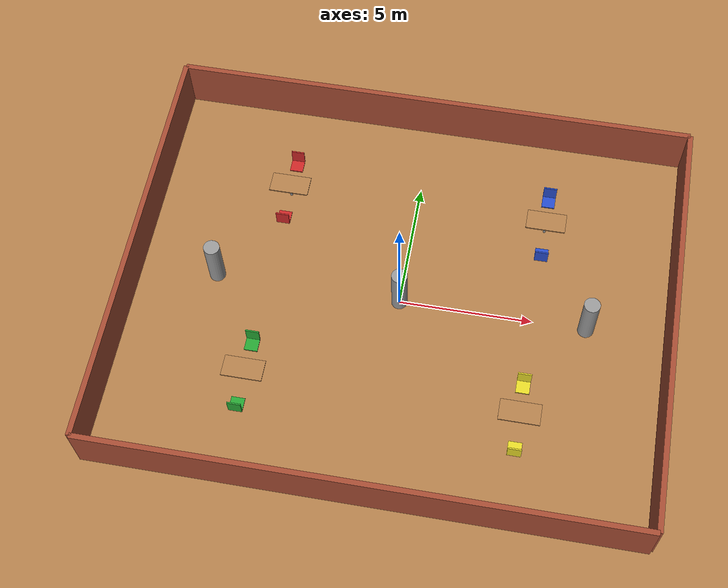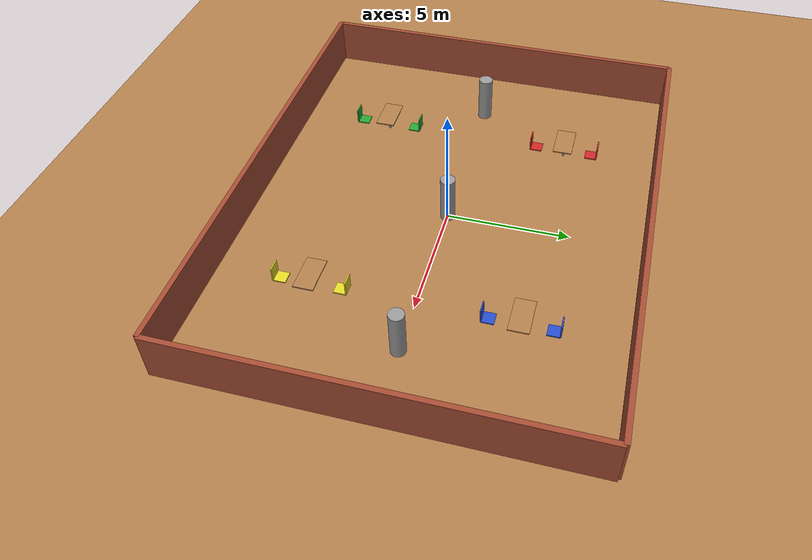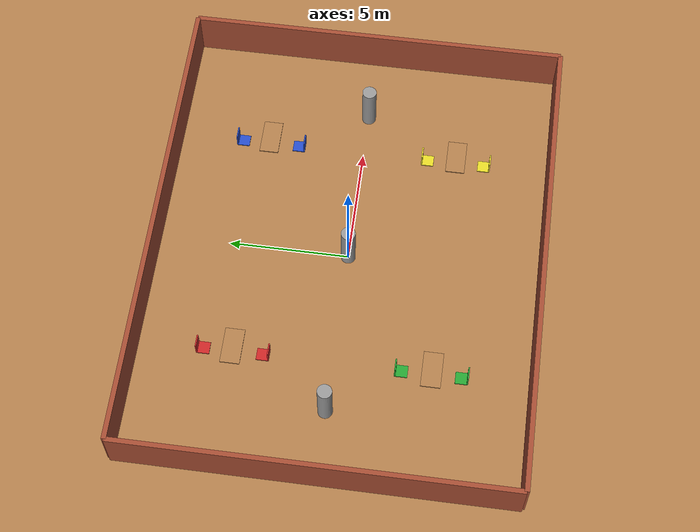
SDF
<?xml version="1.0" ?>
<sdf version="1.7">
  <world name="cafe_restaurant">

    <!-- Lumière -->
    <light name='sun' type='directional'>
      <cast_shadows>1</cast_shadows>
      <pose>0 0 10 0 0 0</pose>
      <diffuse>0.8 0.8 0.8 1</diffuse>
      <specular>0.2 0.2 0.2 1</specular>
      <direction>-0.5 0.1 -0.9</direction>
    </light>

    <!-- Sol -->
    <model name='ground_plane'>
      <static>1</static>
      <link name='link'>
        <collision name='collision'>
          <geometry>
            <plane>
              <normal>0 0 1</normal>
              <size>100 100</size>
            </plane>
          </geometry>
        </collision>
        <visual name='visual'>
          <cast_shadows>0</cast_shadows>
          <geometry>
            <plane>
              <normal>0 0 1</normal>
              <size>100 100</size>
            </plane>
          </geometry>
          <material>
            <script>
              <uri>file://media/materials/scripts/gazebo.material</uri>
              <name>Gazebo/Wood</name>
            </script>
          </material>
        </visual>
      </link>
    </model>

    <!-- Paramètres physiques -->
    <gravity>0 0 -9.8</gravity>
    <physics type='ode'>
      <max_step_size>0.001</max_step_size>
      <real_time_factor>1</real_time_factor>
      <real_time_update_rate>1000</real_time_update_rate>
    </physics>

    <!-- Scène -->
    <scene>
      <ambient>0.6 0.6 0.6 1</ambient>
      <background>0.8 0.8 0.9 1</background>
      <shadows>1</shadows>
    </scene>

    <!-- ==================== MURS DU CAFÉ ==================== -->

    <!-- Mur NORD (haut) -->
    <model name='wall_north'>
      <static>1</static>
      <pose>0 8 1 0 0 0</pose>
      <link name='link'>
        <collision name='collision'>
          <geometry>
            <box>
              <size>20 0.2 2</size>
            </box>
          </geometry>
        </collision>
        <visual name='visual'>
          <geometry>
            <box>
              <size>20 0.2 2</size>
            </box>
          </geometry>
          <material>
            <script>
              <uri>file://media/materials/scripts/gazebo.material</uri>
              <name>Gazebo/Bricks</name>
            </script>
          </material>
        </visual>
      </link>
    </model>

    <!-- Mur SUD (bas) -->
    <model name='wall_south'>
      <static>1</static>
      <pose>0 -8 1 0 0 0</pose>
      <link name='link'>
        <collision name='collision'>
          <geometry>
            <box>
              <size>20 0.2 2</size>
            </box>
          </geometry>
        </collision>
        <visual name='visual'>
          <geometry>
            <box>
              <size>20 0.2 2</size>
            </box>
          </geometry>
          <material>
            <script>
              <uri>file://media/materials/scripts/gazebo.material</uri>
              <name>Gazebo/Bricks</name>
            </script>
          </material>
        </visual>
      </link>
    </model>

    <!-- Mur EST (droite) -->
    <model name='wall_east'>
      <static>1</static>
      <pose>10 0 1 0 0 0</pose>
      <link name='link'>
        <collision name='collision'>
          <geometry>
            <box>
              <size>0.2 16 2</size>
            </box>
          </geometry>
        </collision>
        <visual name='visual'>
          <geometry>
            <box>
              <size>0.2 16 2</size>
            </box>
          </geometry>
          <material>
            <script>
              <uri>file://media/materials/scripts/gazebo.material</uri>
              <name>Gazebo/Bricks</name>
            </script>
          </material>
        </visual>
      </link>
    </model>

    <!-- Mur OUEST (gauche) -->
    <model name='wall_west'>
      <static>1</static>
      <pose>-10 0 1 0 0 0</pose>
      <link name='link'>
        <collision name='collision'>
          <geometry>
            <box>
              <size>0.2 16 2</size>
            </box>
          </geometry>
        </collision>
        <visual name='visual'>
          <geometry>
            <box>
              <size>0.2 16 2</size>
            </box>
          </geometry>
          <material>
            <script>
              <uri>file://media/materials/scripts/gazebo.material</uri>
              <name>Gazebo/Bricks</name>
            </script>
          </material>
        </visual>
      </link>
    </model>

    <!-- ==================== TABLE 1 (Haut Gauche) ==================== -->

    <!-- Plateau de table 1 -->
    <model name='table1_top'>
      <static>1</static>
      <pose>-5 4 0.75 0 0 0</pose>
      <link name='link'>
        <collision name='collision'>
          <geometry>
            <box>
              <size>1.5 0.8 0.05</size>
            </box>
          </geometry>
        </collision>
        <visual name='visual'>
          <geometry>
            <box>
              <size>1.5 0.8 0.05</size>
            </box>
          </geometry>
          <material>
            <script>
              <uri>file://media/materials/scripts/gazebo.material</uri>
              <name>Gazebo/Wood</name>
            </script>
          </material>
        </visual>
      </link>
    </model>

    <!-- Pied de table 1 -->
    <model name='table1_leg'>
      <static>1</static>
      <pose>-5 4 0.375 0 0 0</pose>
      <link name='link'>
        <collision name='collision'>
          <geometry>
            <cylinder>
              <radius>0.05</radius>
              <length>0.75</length>
            </cylinder>
          </geometry>
        </collision>
        <visual name='visual'>
          <geometry>
            <cylinder>
              <radius>0.05</radius>
              <length>0.75</length>
            </cylinder>
          </geometry>
          <material>
            <script>
              <uri>file://media/materials/scripts/gazebo.material</uri>
              <name>Gazebo/Grey</name>
            </script>
          </material>
        </visual>
      </link>
    </model>

    <!-- Chaise 1A (devant table 1) -->
    <model name='chair1a'>
      <static>1</static>
      <pose>-5 5.2 0.25 0 0 0</pose>
      <link name='seat'>
        <collision name='collision'>
          <geometry>
            <box>
              <size>0.5 0.5 0.05</size>
            </box>
          </geometry>
        </collision>
        <visual name='visual'>
          <geometry>
            <box>
              <size>0.5 0.5 0.05</size>
            </box>
          </geometry>
          <material>
            <script>
              <uri>file://media/materials/scripts/gazebo.material</uri>
              <name>Gazebo/Red</name>
            </script>
          </material>
        </visual>
      </link>
    </model>

    <!-- Dossier chaise 1A -->
    <model name='chair1a_back'>
      <static>1</static>
      <pose>-5 5.45 0.55 0 0 0</pose>
      <link name='link'>
        <collision name='collision'>
          <geometry>
            <box>
              <size>0.5 0.05 0.6</size>
            </box>
          </geometry>
        </collision>
        <visual name='visual'>
          <geometry>
            <box>
              <size>0.5 0.05 0.6</size>
            </box>
          </geometry>
          <material>
            <script>
              <uri>file://media/materials/scripts/gazebo.material</uri>
              <name>Gazebo/Red</name>
            </script>
          </material>
        </visual>
      </link>
    </model>

    <!-- Chaise 1B (derrière table 1) -->
    <model name='chair1b'>
      <static>1</static>
      <pose>-5 2.8 0.25 0 0 3.14159</pose>
      <link name='seat'>
        <collision name='collision'>
          <geometry>
            <box>
              <size>0.5 0.5 0.05</size>
            </box>
          </geometry>
        </collision>
        <visual name='visual'>
          <geometry>
            <box>
              <size>0.5 0.5 0.05</size>
            </box>
          </geometry>
          <material>
            <script>
              <uri>file://media/materials/scripts/gazebo.material</uri>
              <name>Gazebo/Red</name>
            </script>
          </material>
        </visual>
      </link>
    </model>

    <!-- Dossier chaise 1B -->
    <model name='chair1b_back'>
      <static>1</static>
      <pose>-5 2.55 0.55 0 0 3.14159</pose>
      <link name='link'>
        <collision name='collision'>
          <geometry>
            <box>
              <size>0.5 0.05 0.6</size>
            </box>
          </geometry>
        </collision>
        <visual name='visual'>
          <geometry>
            <box>
              <size>0.5 0.05 0.6</size>
            </box>
          </geometry>
          <material>
            <script>
              <uri>file://media/materials/scripts/gazebo.material</uri>
              <name>Gazebo/Red</name>
            </script>
          </material>
        </visual>
      </link>
    </model>

    <!-- ==================== TABLE 2 (Haut Droite) ==================== -->

    <!-- Plateau de table 2 -->
    <model name='table2_top'>
      <static>1</static>
      <pose>5 4 0.75 0 0 0</pose>
      <link name='link'>
        <collision name='collision'>
          <geometry>
            <box>
              <size>1.5 0.8 0.05</size>
            </box>
          </geometry>
        </collision>
        <visual name='visual'>
          <geometry>
            <box>
              <size>1.5 0.8 0.05</size>
            </box>
          </geometry>
          <material>
            <script>
              <uri>file://media/materials/scripts/gazebo.material</uri>
              <name>Gazebo/Wood</name>
            </script>
          </material>
        </visual>
      </link>
    </model>

    <!-- Pied de table 2 -->
    <model name='table2_leg'>
      <static>1</static>
      <pose>5 4 0.375 0 0 0</pose>
      <link name='link'>
        <collision name='collision'>
          <geometry>
            <cylinder>
              <radius>0.05</radius>
              <length>0.75</length>
            </cylinder>
          </geometry>
        </collision>
        <visual name='visual'>
          <geometry>
            <cylinder>
              <radius>0.05</radius>
              <length>0.75</length>
            </cylinder>
          </geometry>
          <material>
            <script>
              <uri>file://media/materials/scripts/gazebo.material</uri>
              <name>Gazebo/Grey</name>
            </script>
          </material>
        </visual>
      </link>
    </model>

    <!-- Chaise 2A -->
    <model name='chair2a'>
      <static>1</static>
      <pose>5 5.2 0.25 0 0 0</pose>
      <link name='seat'>
        <collision name='collision'>
          <geometry>
            <box>
              <size>0.5 0.5 0.05</size>
            </box>
          </geometry>
        </collision>
        <visual name='visual'>
          <geometry>
            <box>
              <size>0.5 0.5 0.05</size>
            </box>
          </geometry>
          <material>
            <script>
              <uri>file://media/materials/scripts/gazebo.material</uri>
              <name>Gazebo/Blue</name>
            </script>
          </material>
        </visual>
      </link>
    </model>

    <!-- Dossier chaise 2A -->
    <model name='chair2a_back'>
      <static>1</static>
      <pose>5 5.45 0.55 0 0 0</pose>
      <link name='link'>
        <collision name='collision'>
          <geometry>
            <box>
              <size>0.5 0.05 0.6</size>
            </box>
          </geometry>
        </collision>
        <visual name='visual'>
          <geometry>
            <box>
              <size>0.5 0.05 0.6</size>
            </box>
          </geometry>
          <material>
            <script>
              <uri>file://media/materials/scripts/gazebo.material</uri>
              <name>Gazebo/Blue</name>
            </script>
          </material>
        </visual>
      </link>
    </model>

    <!-- Chaise 2B -->
    <model name='chair2b'>
      <static>1</static>
      <pose>5 2.8 0.25 0 0 3.14159</pose>
      <link name='seat'>
        <collision name='collision'>
          <geometry>
            <box>
              <size>0.5 0.5 0.05</size>
            </box>
          </geometry>
        </collision>
        <visual name='visual'>
          <geometry>
            <box>
              <size>0.5 0.5 0.05</size>
            </box>
          </geometry>
          <material>
            <script>
              <uri>file://media/materials/scripts/gazebo.material</uri>
              <name>Gazebo/Blue</name>
            </script>
          </material>
        </visual>
      </link>
    </model>

    <!-- Dossier chaise 2B -->
    <model name='chair2b_back'>
      <static>1</static>
      <pose>5 2.55 0.55 0 0 3.14159</pose>
      <link name='link'>
        <collision name='collision'>
          <geometry>
            <box>
              <size>0.5 0.05 0.6</size>
            </box>
          </geometry>
        </collision>
        <visual name='visual'>
          <geometry>
            <box>
              <size>0.5 0.05 0.6</size>
            </box>
          </geometry>
          <material>
            <script>
              <uri>file://media/materials/scripts/gazebo.material</uri>
              <name>Gazebo/Blue</name>
            </script>
          </material>
        </visual>
      </link>
    </model>

    <!-- ==================== TABLE 3 (Bas Gauche) ==================== -->

    <!-- Plateau de table 3 -->
    <model name='table3_top'>
      <static>1</static>
      <pose>-5 -4 0.75 0 0 0</pose>
      <link name='link'>
        <collision name='collision'>
          <geometry>
            <box>
              <size>1.5 0.8 0.05</size>
            </box>
          </geometry>
        </collision>
        <visual name='visual'>
          <geometry>
            <box>
              <size>1.5 0.8 0.05</size>
            </box>
          </geometry>
          <material>
            <script>
              <uri>file://media/materials/scripts/gazebo.material</uri>
              <name>Gazebo/Wood</name>
            </script>
          </material>
        </visual>
      </link>
    </model>

    <!-- Pied de table 3 -->
    <model name='table3_leg'>
      <static>1</static>
      <pose>-5 -4 0.375 0 0 0</pose>
      <link name='link'>
        <collision name='collision'>
          <geometry>
            <cylinder>
              <radius>0.05</radius>
              <length>0.75</length>
            </cylinder>
          </geometry>
        </collision>
        <visual name='visual'>
          <geometry>
            <cylinder>
              <radius>0.05</radius>
              <length>0.75</length>
            </cylinder>
          </geometry>
          <material>
            <script>
              <uri>file://media/materials/scripts/gazebo.material</uri>
              <name>Gazebo/Grey</name>
            </script>
          </material>
        </visual>
      </link>
    </model>

    <!-- Chaise 3A -->
    <model name='chair3a'>
      <static>1</static>
      <pose>-5 -2.8 0.25 0 0 0</pose>
      <link name='seat'>
        <collision name='collision'>
          <geometry>
            <box>
              <size>0.5 0.5 0.05</size>
            </box>
          </geometry>
        </collision>
        <visual name='visual'>
          <geometry>
            <box>
              <size>0.5 0.5 0.05</size>
            </box>
          </geometry>
          <material>
            <script>
              <uri>file://media/materials/scripts/gazebo.material</uri>
              <name>Gazebo/Green</name>
            </script>
          </material>
        </visual>
      </link>
    </model>

    <!-- Dossier chaise 3A -->
    <model name='chair3a_back'>
      <static>1</static>
      <pose>-5 -2.55 0.55 0 0 0</pose>
      <link name='link'>
        <collision name='collision'>
          <geometry>
            <box>
              <size>0.5 0.05 0.6</size>
            </box>
          </geometry>
        </collision>
        <visual name='visual'>
          <geometry>
            <box>
              <size>0.5 0.05 0.6</size>
            </box>
          </geometry>
          <material>
            <script>
              <uri>file://media/materials/scripts/gazebo.material</uri>
              <name>Gazebo/Green</name>
            </script>
          </material>
        </visual>
      </link>
    </model>

    <!-- Chaise 3B -->
    <model name='chair3b'>
      <static>1</static>
      <pose>-5 -5.2 0.25 0 0 3.14159</pose>
      <link name='seat'>
        <collision name='collision'>
          <geometry>
            <box>
              <size>0.5 0.5 0.05</size>
            </box>
          </geometry>
        </collision>
        <visual name='visual'>
          <geometry>
            <box>
              <size>0.5 0.5 0.05</size>
            </box>
          </geometry>
          <material>
            <script>
              <uri>file://media/materials/scripts/gazebo.material</uri>
              <name>Gazebo/Green</name>
            </script>
          </material>
        </visual>
      </link>
    </model>

    <!-- Dossier chaise 3B -->
    <model name='chair3b_back'>
      <static>1</static>
      <pose>-5 -5.45 0.55 0 0 3.14159</pose>
      <link name='link'>
        <collision name='collision'>
          <geometry>
            <box>
              <size>0.5 0.05 0.6</size>
            </box>
          </geometry>
        </collision>
        <visual name='visual'>
          <geometry>
            <box>
              <size>0.5 0.05 0.6</size>
            </box>
          </geometry>
          <material>
            <script>
              <uri>file://media/materials/scripts/gazebo.material</uri>
              <name>Gazebo/Green</name>
            </script>
          </material>
        </visual>
      </link>
    </model>

    <!-- ==================== TABLE 4 (Bas Droite) ==================== -->

    <!-- Plateau de table 4 -->
    <model name='table4_top'>
      <static>1</static>
      <pose>5 -4 0.75 0 0 0</pose>
      <link name='link'>
        <collision name='collision'>
          <geometry>
            <box>
              <size>1.5 0.8 0.05</size>
            </box>
          </geometry>
        </collision>
        <visual name='visual'>
          <geometry>
            <box>
              <size>1.5 0.8 0.05</size>
            </box>
          </geometry>
          <material>
            <script>
              <uri>file://media/materials/scripts/gazebo.material</uri>
              <name>Gazebo/Wood</name>
            </script>
          </material>
        </visual>
      </link>
    </model>

    <!-- Pied de table 4 -->
    <model name='table4_leg'>
      <static>1</static>
      <pose>5 -4 0.375 0 0 0</pose>
      <link name='link'>
        <collision name='collision'>
          <geometry>
            <cylinder>
              <radius>0.05</radius>
              <length>0.75</length>
            </cylinder>
          </geometry>
        </collision>
        <visual name='visual'>
          <geometry>
            <cylinder>
              <radius>0.05</radius>
              <length>0.75</length>
            </cylinder>
          </geometry>
          <material>
            <script>
              <uri>file://media/materials/scripts/gazebo.material</uri>
              <name>Gazebo/Grey</name>
            </script>
          </material>
        </visual>
      </link>
    </model>

    <!-- Chaise 4A -->
    <model name='chair4a'>
      <static>1</static>
      <pose>5 -2.8 0.25 0 0 0</pose>
      <link name='seat'>
        <collision name='collision'>
          <geometry>
            <box>
              <size>0.5 0.5 0.05</size>
            </box>
          </geometry>
        </collision>
        <visual name='visual'>
          <geometry>
            <box>
              <size>0.5 0.5 0.05</size>
            </box>
          </geometry>
          <material>
            <script>
              <uri>file://media/materials/scripts/gazebo.material</uri>
              <name>Gazebo/Yellow</name>
            </script>
          </material>
        </visual>
      </link>
    </model>

    <!-- Dossier chaise 4A -->
    <model name='chair4a_back'>
      <static>1</static>
      <pose>5 -2.55 0.55 0 0 0</pose>
      <link name='link'>
        <collision name='collision'>
          <geometry>
            <box>
              <size>0.5 0.05 0.6</size>
            </box>
          </geometry>
        </collision>
        <visual name='visual'>
          <geometry>
            <box>
              <size>0.5 0.05 0.6</size>
            </box>
          </geometry>
          <material>
            <script>
              <uri>file://media/materials/scripts</uri>
<name>Gazebo/Yellow</name>
</script>
</material>
</visual>
</link>
</model>
<!-- Chaise 4B -->
<model name='chair4b'>
  <static>1</static>
  <pose>5 -5.2 0.25 0 0 3.14159</pose>
  <link name='seat'>
    <collision name='collision'>
      <geometry>
        <box>
          <size>0.5 0.5 0.05</size>
        </box>
      </geometry>
    </collision>
    <visual name='visual'>
      <geometry>
        <box>
          <size>0.5 0.5 0.05</size>
        </box>
      </geometry>
      <material>
        <script>
          <uri>file://media/materials/scripts/gazebo.material</uri>
          <name>Gazebo/Yellow</name>
        </script>
      </material>
    </visual>
  </link>
</model>

<!-- Dossier chaise 4B -->
<model name='chair4b_back'>
  <static>1</static>
  <pose>5 -5.45 0.55 0 0 3.14159</pose>
  <link name='link'>
    <collision name='collision'>
      <geometry>
        <box>
          <size>0.5 0.05 0.6</size>
        </box>
      </geometry>
    </collision>
    <visual name='visual'>
      <geometry>
        <box>
          <size>0.5 0.05 0.6</size>
        </box>
      </geometry>
      <material>
        <script>
          <uri>file://media/materials/scripts/gazebo.material</uri>
          <name>Gazebo/Yellow</name>
        </script>
      </material>
    </visual>
  </link>
</model>

<!-- ==================== OBSTACLES (Colonnes) ==================== -->

<!-- Colonne 1 -->
<model name='pillar1'>
  <static>1</static>
  <pose>0 0 1 0 0 0</pose>
  <link name='link'>
    <collision name='collision'>
      <geometry>
        <cylinder>
          <radius>0.3</radius>
          <length>2</length>
        </cylinder>
      </geometry>
    </collision>
    <visual name='visual'>
      <geometry>
        <cylinder>
          <radius>0.3</radius>
          <length>2</length>
        </cylinder>
      </geometry>
      <material>
        <script>
          <uri>file://media/materials/scripts/gazebo.material</uri>
          <name>Gazebo/Grey</name>
        </script>
      </material>
    </visual>
  </link>
</model>

<!-- Colonne 2 -->
<model name='pillar2'>
  <static>1</static>
  <pose>-7 0 1 0 0 0</pose>
  <link name='link'>
    <collision name='collision'>
      <geometry>
        <cylinder>
          <radius>0.3</radius>
          <length>2</length>
        </cylinder>
      </geometry>
    </collision>
    <visual name='visual'>
      <geometry>
        <cylinder>
          <radius>0.3</radius>
          <length>2</length>
        </cylinder>
      </geometry>
      <material>
        <script>
          <uri>file://media/materials/scripts/gazebo.material</uri>
          <name>Gazebo/Grey</name>
        </script>
      </material>
    </visual>
  </link>
</model>

<!-- Colonne 3 -->
<model name='pillar3'>
  <static>1</static>
  <pose>7 0 1 0 0 0</pose>
  <link name='link'>
    <collision name='collision'>
      <geometry>
        <cylinder>
          <radius>0.3</radius>
          <length>2</length>
        </cylinder>
      </geometry>
    </collision>
    <visual name='visual'>
      <geometry>
        <cylinder>
          <radius>0.3</radius>
          <length>2</length>
        </cylinder>
      </geometry>
      <material>
        <script>
          <uri>file://media/materials/scripts/gazebo.material</uri>
          <name>Gazebo/Grey</name>
        </script>
      </material>
    </visual>
  </link>
</model>
  </world>
</sdf>
